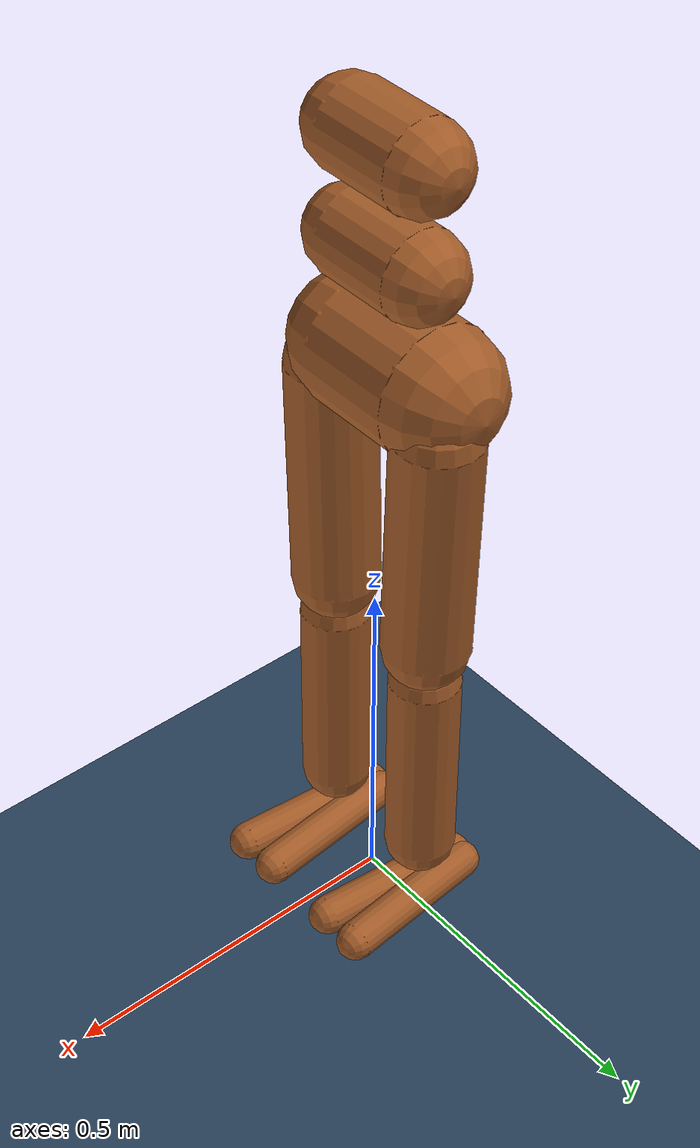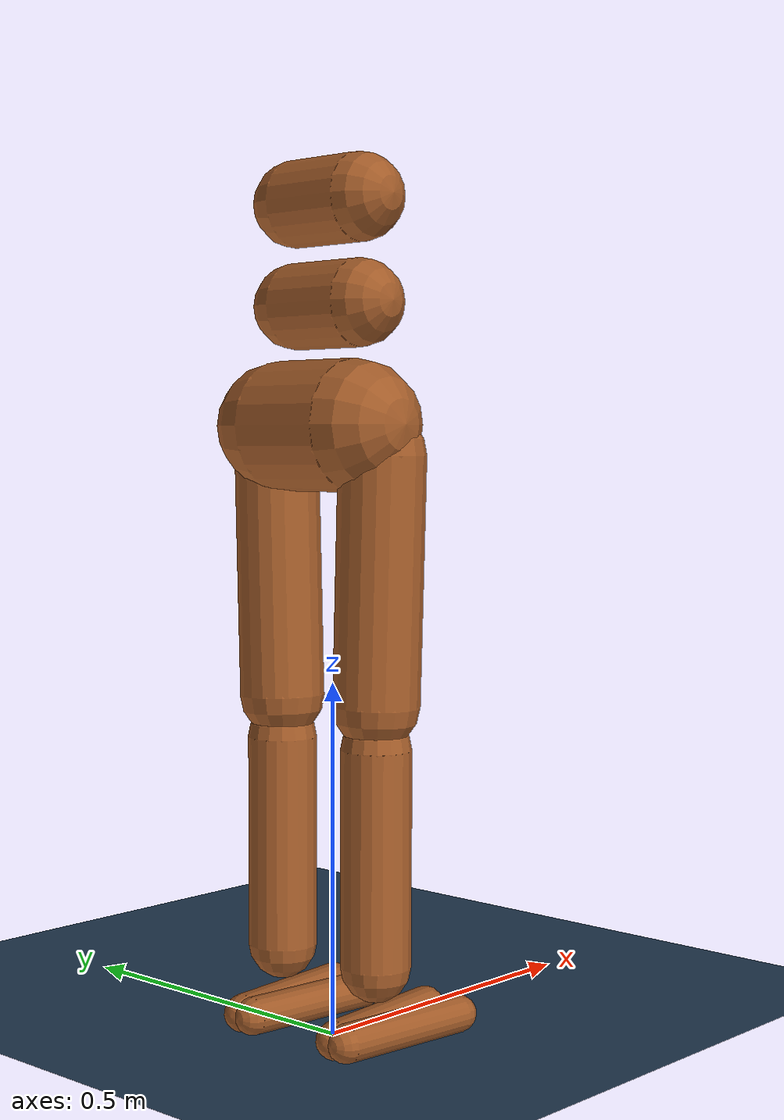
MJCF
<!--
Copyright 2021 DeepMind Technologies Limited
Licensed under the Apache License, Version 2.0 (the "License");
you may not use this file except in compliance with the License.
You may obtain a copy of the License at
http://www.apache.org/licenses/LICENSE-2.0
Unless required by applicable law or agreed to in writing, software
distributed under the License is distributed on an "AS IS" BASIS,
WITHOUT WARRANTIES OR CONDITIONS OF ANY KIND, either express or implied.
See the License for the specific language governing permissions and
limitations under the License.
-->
<mujoco model="Humanoid">
  <option timestep="0.005"/>

  <visual>
    <map force="0.1" zfar="30"/>
    <rgba haze="0.15 0.25 0.35 1"/>
    <global offwidth="2560" offheight="1440" elevation="-20" azimuth="120"/>
  </visual>

  <statistic center="0 0 0.7"/>

  <asset>
    <texture type="skybox" builtin="gradient" rgb1=".3 .5 .7" rgb2="0 0 0" width="32" height="512"/>
    <texture name="body" type="cube" builtin="flat" mark="cross" width="128" height="128" rgb1="0.8 0.6 0.4" rgb2="0.8 0.6 0.4" markrgb="1 1 1"/>
    <material name="body" texture="body" texuniform="true" rgba="0.8 0.6 .4 1"/>
    <texture name="grid" type="2d" builtin="checker" width="512" height="512" rgb1=".1 .2 .3" rgb2=".2 .3 .4"/>
    <material name="grid" texture="grid" texrepeat="1 1" texuniform="true" reflectance=".2"/>
  </asset>

  <default>
    <motor ctrlrange="-1 1" ctrllimited="true"/>
    <default class="body">

      <!-- geoms -->
      <geom type="capsule" condim="1" friction=".7" solimp=".9 .99 .003" solref=".015 1" material="body" group="1"/>
      <default class="thigh">
        <geom size=".06"/>
      </default>
      <default class="shin">
        <geom fromto="0 0 0 0 0 -.3"  size=".049"/>
      </default>
      <default class="foot">
        <geom size=".027"/>
        <default class="foot1">
          <geom fromto="-.07 -.01 0 .14 -.03 0"/>
        </default>
        <default class="foot2">
          <geom fromto="-.07 .01 0 .14  .03 0"/>
        </default>
      </default>
      <default class="arm_upper">
        <geom size=".04"/>
      </default>
      <default class="arm_lower">
        <geom size=".031"/>
      </default>
      <default class="hand">
        <geom type="sphere" size=".04"/>
      </default>

      <!-- joints -->
      <joint type="hinge" damping=".2" stiffness="1" armature=".01" limited="true" solimplimit="0 .99 .01"/>
      <default class="joint_big">
        <joint damping="5" stiffness="10"/>
        <default class="hip_x">
          <joint range="-30 10"/>
        </default>
        <default class="hip_z">
          <joint range="-60 35"/>
        </default>
        <default class="hip_y">
          <joint axis="0 1 0" range="-150 20"/>
        </default>
        <default class="joint_big_stiff">
          <joint stiffness="20"/>
        </default>
      </default>
      <default class="knee">
        <joint pos="0 0 .02" axis="0 -1 0" range="-160 2"/>
      </default>
      <default class="ankle">
        <joint range="-50 50"/>
        <default class="ankle_y">
          <joint pos="0 0 .08" axis="0 1 0" stiffness="6"/>
        </default>
        <default class="ankle_x">
          <joint pos="0 0 .04" stiffness="3"/>
        </default>
      </default>
      <default class="shoulder">
        <joint range="-85 60"/>
      </default>
      <default class="elbow">
        <joint range="-100 50" stiffness="0"/>
      </default>
    </default>
  </default>

  <worldbody>
    <geom name="floor" size="0 0 .05" type="plane" material="grid" condim="3"/>
    <light name="spotlight" mode="targetbodycom" target="torso" diffuse=".8 .8 .8" specular="0.3 0.3 0.3" pos="0 -6 4" cutoff="30"/>
    <body name="torso" pos="0 0 1.282" childclass="body">
      <light name="top" pos="0 0 2" mode="trackcom"/>
      <camera name="back" pos="-3 0 1" xyaxes="0 -1 0 1 0 2" mode="trackcom"/>
      <camera name="side" pos="0 -3 1" xyaxes="1 0 0 0 1 2" mode="trackcom"/>
      <freejoint name="root"/>
      <geom name="waist_upper" fromto="-.01 -.06 -.12 -.01 .06 -.12" size=".06"/>
      <body name="waist_lower" pos="-.01 0 -.26">
        <geom name="waist_lower" fromto="0 -.06 0 0 .06 0" size=".06"/>
        <joint name="abdomen_z" pos="0 0 .065" axis="0 0 1" range="-45 45" class="joint_big_stiff"/>
        <joint name="abdomen_y" pos="0 0 .065" axis="0 1 0" range="-75 30" class="joint_big"/>
        <body name="pelvis" pos="0 0 -.165">
          <joint name="abdomen_x" pos="0 0 .1" axis="1 0 0" range="-35 35" class="joint_big"/>
          <geom name="butt" fromto="-.02 -.07 0 -.02 .07 0" size=".09"/>
          <body name="thigh_right" pos="0 -.1 -.04">
            <joint name="hip_x_right" axis="1 0 0" class="hip_x"/>
            <joint name="hip_z_right" axis="0 0 1" class="hip_z"/>
            <joint name="hip_y_right" class="hip_y"/>
            <geom name="thigh_right" fromto="0 0 0 0 .01 -.34" class="thigh"/>
            <body name="shin_right" pos="0 .01 -.4">
              <joint name="knee_right" class="knee"/>
              <geom name="shin_right" class="shin"/>
              <body name="foot_right" pos="0 0 -.39">
                <joint name="ankle_y_right" class="ankle_y"/>
                <joint name="ankle_x_right" class="ankle_x" axis="1 0 .5"/>
                <geom name="foot1_right" class="foot1"/>
                <geom name="foot2_right" class="foot2"/>
              </body>
            </body>
          </body>
          <body name="thigh_left" pos="0 .1 -.04">
            <joint name="hip_x_left" axis="-1 0 0" class="hip_x"/>
            <joint name="hip_z_left" axis="0 0 -1" class="hip_z"/>
            <joint name="hip_y_left" class="hip_y"/>
            <geom name="thigh_left" fromto="0 0 0 0 -.01 -.34" class="thigh"/>
            <body name="shin_left" pos="0 -.01 -.4">
              <joint name="knee_left" class="knee"/>
              <geom name="shin_left" fromto="0 0 0 0 0 -.3" class="shin"/>
              <body name="foot_left" pos="0 0 -.39">
                <joint name="ankle_y_left" class="ankle_y"/>
                <joint name="ankle_x_left" class="ankle_x" axis="-1 0 -.5"/>
                <geom name="foot1_left" class="foot1"/>
                <geom name="foot2_left" class="foot2"/>
              </body>
            </body>
          </body>
        </body>
      </body>
    </body>
  </worldbody>

  <contact>
    <exclude body1="waist_lower" body2="thigh_right"/>
    <exclude body1="waist_lower" body2="thigh_left"/>
  </contact>

  <tendon>
    <fixed name="hamstring_right" limited="true" range="-0.3 2">
      <joint joint="hip_y_right" coef=".5"/>
      <joint joint="knee_right" coef="-.5"/>
    </fixed>
    <fixed name="hamstring_left" limited="true" range="-0.3 2">
      <joint joint="hip_y_left" coef=".5"/>
      <joint joint="knee_left" coef="-.5"/>
    </fixed>
  </tendon>

  <actuator>
    <motor name="abdomen_z"       gear="40"  joint="abdomen_z"/>
    <motor name="abdomen_y"       gear="40"  joint="abdomen_y"/>
    <motor name="abdomen_x"       gear="40"  joint="abdomen_x"/>
    <motor name="hip_x_right"     gear="40"  joint="hip_x_right"/>
    <motor name="hip_z_right"     gear="40"  joint="hip_z_right"/>
    <motor name="hip_y_right"     gear="120" joint="hip_y_right"/>
    <motor name="knee_right"      gear="80"  joint="knee_right"/>
    <motor name="ankle_y_right"   gear="20"  joint="ankle_y_right"/>
    <motor name="ankle_x_right"   gear="20"  joint="ankle_x_right"/>
    <motor name="hip_x_left"      gear="40"  joint="hip_x_left"/>
    <motor name="hip_z_left"      gear="40"  joint="hip_z_left"/>
    <motor name="hip_y_left"      gear="120" joint="hip_y_left"/>
    <motor name="knee_left"       gear="80"  joint="knee_left"/>
    <motor name="ankle_y_left"    gear="20"  joint="ankle_y_left"/>
    <motor name="ankle_x_left"    gear="20"  joint="ankle_x_left"/>
  </actuator>

</mujoco>
